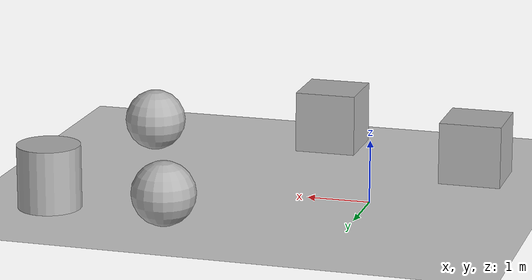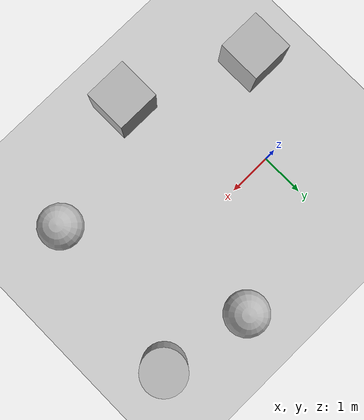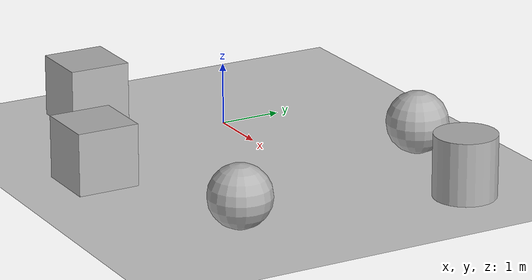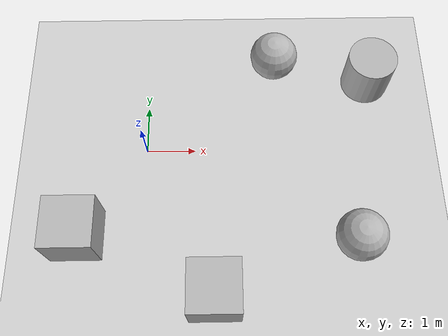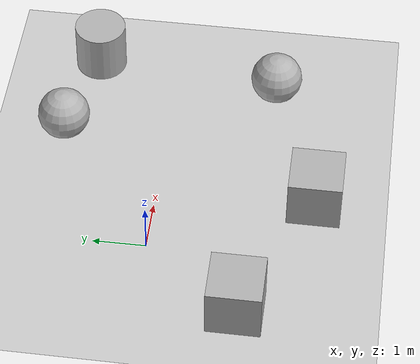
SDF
<sdf version='1.9'>
<world name='robot_world'>
    <!-- Physics Engine Settings -->
    <physics name='1ms' type='ignored'>
        <max_step_size>0.001</max_step_size>
        <real_time_factor>1</real_time_factor>
        <real_time_update_rate>1000</real_time_update_rate>
    </physics>
    <gravity>0 0 -9.8</gravity>
    <magnetic_field>6e-06 2.3e-05 -4.2e-05</magnetic_field>

    <!-- Necessary Plugins -->
    <plugin name='ignition::gazebo::systems::Physics' filename='libignition-gazebo-physics-system.so'/>
    <plugin name='ignition::gazebo::systems::UserCommands' filename='libignition-gazebo-user-commands-system.so'/>
    <plugin name='ignition::gazebo::systems::SceneBroadcaster' filename='libignition-gazebo-scene-broadcaster-system.so'/>

    <!-- Sun Light -->
    <light type="directional" name="sun">
        <cast_shadows>true</cast_shadows>
        <pose>0 0 10 0 0 0</pose>
        <diffuse>0.8 0.8 0.8 1</diffuse>
        <specular>0.2 0.2 0.2 1</specular>
        <attenuation>
            <range>1000</range>
            <constant>0.9</constant>
            <linear>0.01</linear>
            <quadratic>0.001</quadratic>
        </attenuation>
        <direction>-0.5 0.1 -0.9</direction>
    </light>

    <!-- Ground Plane -->
    <model name="ground_plane">
        <static>true</static>
        <link name="link">
            <collision name="collision">
            <geometry>
                <plane>
                <normal>0 0 1</normal>
                </plane>
            </geometry>
            </collision>
            <visual name="visual">
            <geometry>
                <plane>
                <normal>0 0 1</normal>
                <size>100 100</size>
                </plane>
            </geometry>
            <material>
                <ambient>0.8 0.8 0.8 1</ambient>
                <diffuse>0.8 0.8 0.8 1</diffuse>
                <specular>0.8 0.8 0.8 1</specular>
            </material>
            </visual>
        </link>
    </model>

    <!-- Obstacles -->
    <model name='box_0'>
        <pose>1.4 -3.0 0.5 0 0 0</pose>
        <static>true</static>
        <link name='link'>
            <collision name='collision'>
            <geometry>
                <box>
                <size>1 1 1</size>
                </box>
            </geometry>
            </collision>
            <visual name='visual'>
            <geometry>
                <box>
                <size>1 1 1</size>
                </box>
            </geometry>
            <material>
                <ambient>0.3 0.3 0.3 1</ambient>
                <diffuse>0.7 0.7 0.7 1</diffuse>
                <specular>1 1 1 1</specular>
            </material>
            </visual>
        </link>
    </model>

    <model name='box_1'>
        <pose>-1.3 -1.8 0.5 0 -0 0</pose>
        <static>true</static>
        <link name='link'>
            <collision name='collision'>
            <geometry>
                <box>
                <size>1 1 1</size>
                </box>
            </geometry>
            </collision>
            <visual name='visual'>
            <geometry>
                <box>
                <size>1 1 1</size>
                </box>
            </geometry>
            <material>
                <ambient>0.3 0.3 0.3 1</ambient>
                <diffuse>0.7 0.7 0.7 1</diffuse>
                <specular>1 1 1 1</specular>
            </material>
            </visual>
        </link>
    </model>

    <model name='cylinder'>
        <pose>4.7 1.6 0.5 0 0 0</pose>
        <static>true</static>
        <link name='link'>
            <collision name='collision'>
            <geometry>
                <cylinder>
                <radius>0.5</radius>
                <length>1</length>
                </cylinder>
            </geometry>
            </collision>
            <visual name='visual'>
            <geometry>
                <cylinder>
                <radius>0.5</radius>
                <length>1</length>
                </cylinder>
            </geometry>
            <material>
                <ambient>0.3 0.3 0.3 1</ambient>
                <diffuse>0.7 0.7 0.7 1</diffuse>
                <specular>1 1 1 1</specular>
            </material>
            </visual>
        </link>
    </model>

    <model name='sphere_0'>
        <pose>2.7 2.0 0.5 0 0 0</pose>
        <static>true</static>
        <link name='link'>
            <collision name='collision'>
            <geometry>
                <sphere>
                <radius>0.5</radius>
                </sphere>
            </geometry>
            </collision>
            <visual name='visual'>
            <geometry>
                <sphere>
                <radius>0.5</radius>
                </sphere>
            </geometry>
            <material>
                <ambient>0.3 0.3 0.3 1</ambient>
                <diffuse>0.7 0.7 0.7 1</diffuse>
                <specular>1 1 1 1</specular>
            </material>
            </visual>
        </link>
    </model>

    <model name='sphere_1'>
        <pose>4.2 -2.0 0.5 0 0 0</pose>
        <static>true</static>
        <link name='link'>
            <collision name='collision'>
            <geometry>
                <sphere>
                <radius>0.5</radius>
                </sphere>
            </geometry>
            </collision>
            <visual name='visual'>
            <geometry>
                <sphere>
                <radius>0.5</radius>
                </sphere>
            </geometry>
            <material>
                <ambient>0.3 0.3 0.3 1</ambient>
                <diffuse>0.7 0.7 0.7 1</diffuse>
                <specular>1 1 1 1</specular>
            </material>
            </visual>
        </link>
    </model>
</world>
</sdf>
